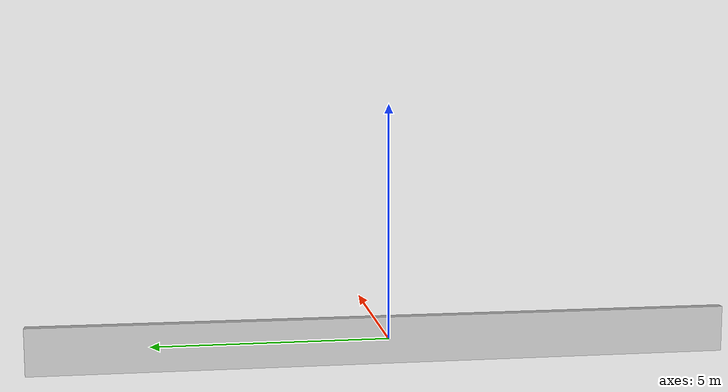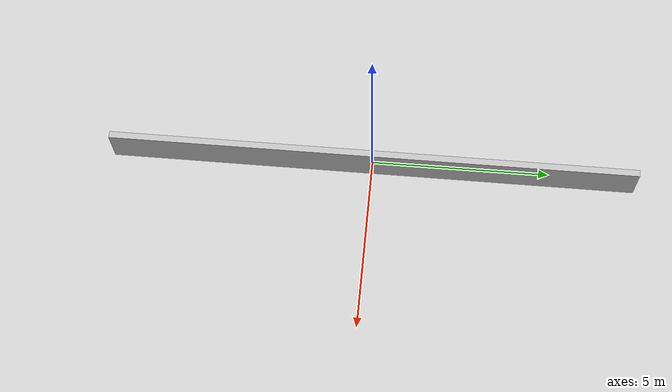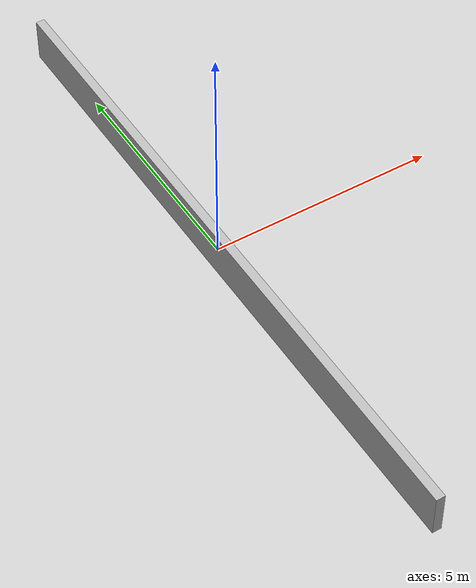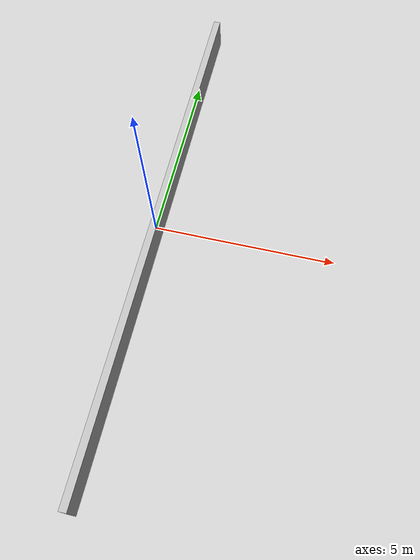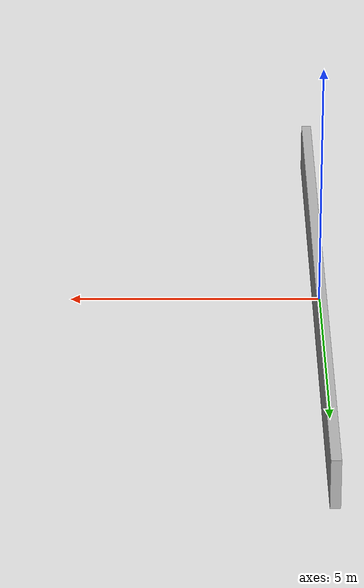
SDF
<?xml version='1.0'?>
<sdf version='1.6'>
  <model name='room1_wall2'>
    <static>true</static>
    <link name='link'>
      <collision name='collision'>
        <geometry><box><size>0.2 15.0 1.0</size></box></geometry>
      </collision>
      <visual name='visual'>
        <geometry><box><size>0.2 15.0 1.0</size></box></geometry>
      </visual>
    </link>
  </model>
</sdf>
